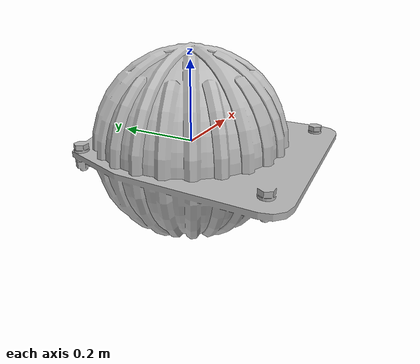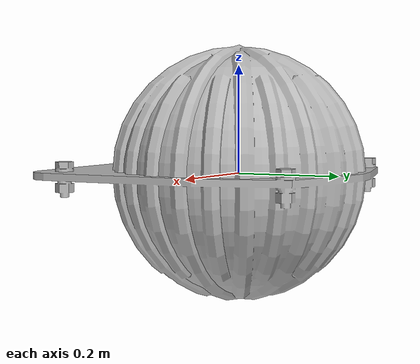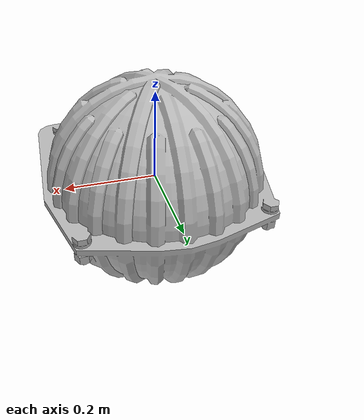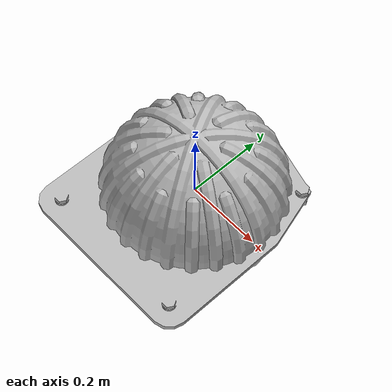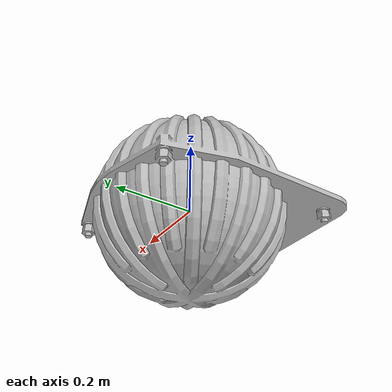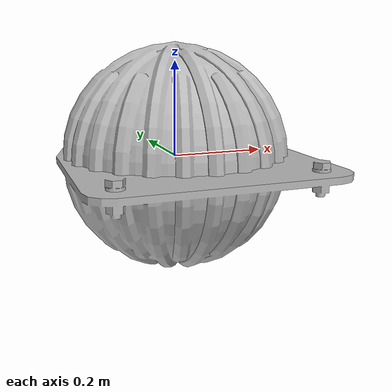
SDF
<?xml version="1.0"?>
<sdf version="1.6">
  <model name="hardhat_ribbed">
    <static>false</static>
    <link name="base_link">
      <inertial>
        <mass>17.7</mass>
        <inertia>
          <ixx>0.55</ixx>
          <ixy>0.0</ixy>
          <ixz>0.0</ixz>
          <iyy>0.55</iyy>
          <iyz>0.0</iyz>
          <izz>0.55</izz>
        </inertia>
      </inertial>
      <visual name="visual">
        <geometry>
           <mesh>
            <uri>file://hardhat_ribbed/meshes/hardhat_ribbed.dae</uri>
          </mesh>
        </geometry>
      </visual>
      <collision name="collision">
        <pose>0 0 0 0 0 0</pose>
        <geometry>
          <mesh>
	    <uri>file://hardhat_ribbed/meshes/hardhat_ribbed_collision.dae</uri>
          </mesh>
        </geometry>
      </collision>
    </link>
  </model>
</sdf>
